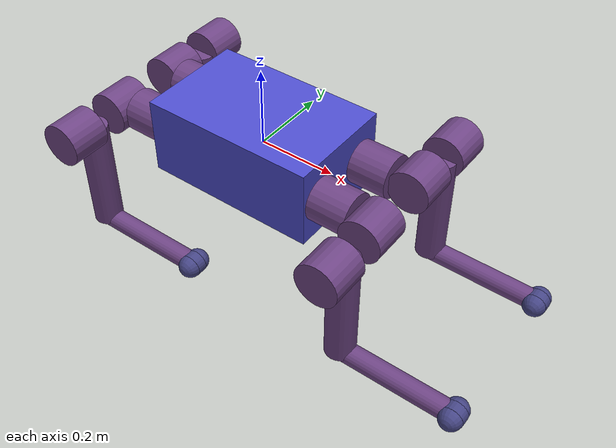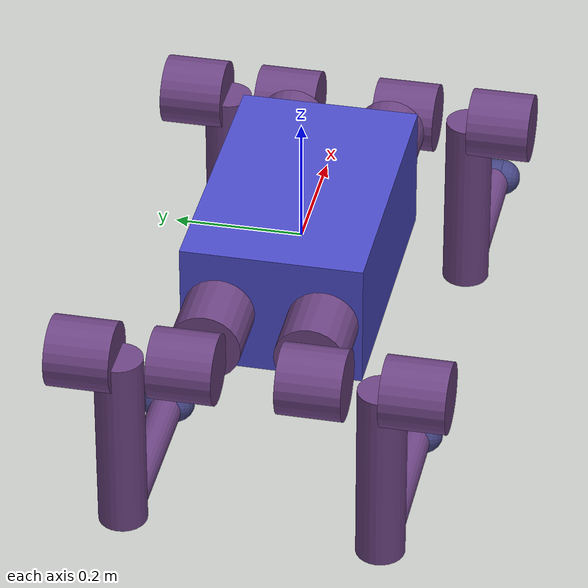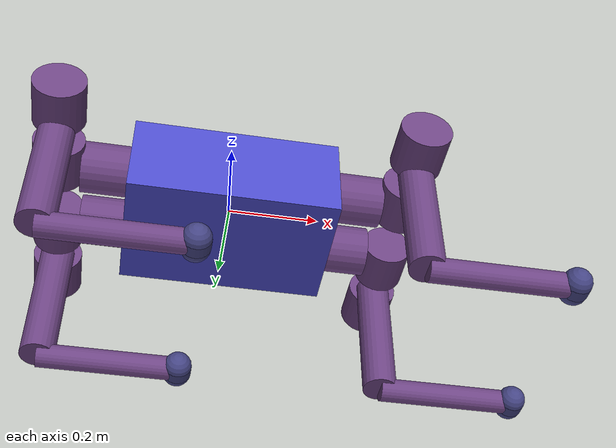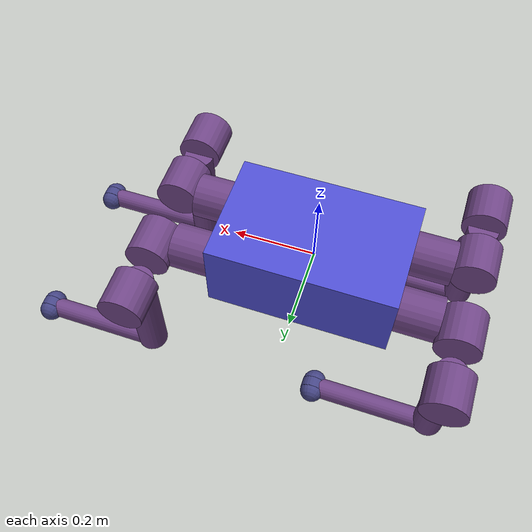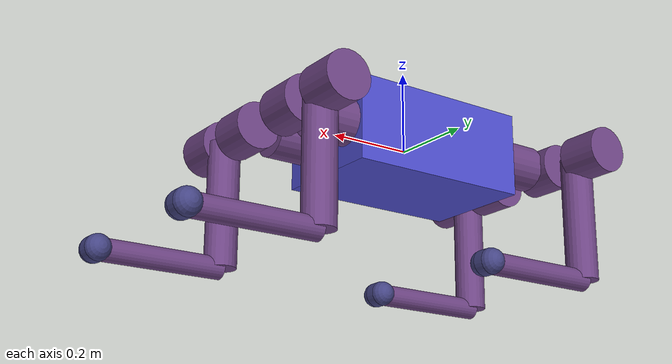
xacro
<?xml version="1.0"?>
<robot xmlns:xacro="http://www.ros.org/wiki/xacro" name="Cerberus">

    <xacro:include filename="$(find cerberus_description)/urdf/leg_macro.xacro" />

    <xacro:arg name="effort" default="20" />
    <xacro:arg name="max_joint_velocity" default="150.0" />

    <link name="base_link">
        <visual>
            <geometry>
                <box size="0.45 0.282 0.2" />
            </geometry>
            <material name="blue">
                <color rgba="0.3 0.3 0.8 1.0" />
            </material>
        </visual>
        <collision>
            <geometry>
                <box size="0.45 0.282 0.2" />
            </geometry>
        </collision>
        <inertial>
            <mass value="5.0" />
            <inertia ixx="0.04980166667" iyy="0.1010416667" izz="0.11751"
                ixy="0.0" ixz="0.0" iyz="0.0" />
        </inertial>
    </link>

    <xacro:leg_macro
        leg_name="front_left"
        parent_link="base_link"
        gearbox_offset="0.1"
        connector_xyz="0.275 0.08 0"
        connector_rpy="0 1.5707963267948966 0"
        axis="0 1 0"
        rot_off="1.5707963267948966"
        shoulder_lower_limit="-2.094395102"
        shoulder_upper_limit="1.047197551"
        knee_rot_off="1.5707963267948966"
        knee_lower_limit="-0.5235987756"
        knee_upper_limit="1.047197551"
        effort="$(arg effort)"
        max_joint_velocity="$(arg effort)"
    />

    <xacro:leg_macro
        leg_name="front_right"
        parent_link="base_link"
        gearbox_offset="0.1"
        connector_xyz="0.275 -0.08 0"
        connector_rpy="3.14159265 -1.5707963267948966 0"
        axis="0 -1 0"
        rot_off="-1.5707963267948966"
        shoulder_lower_limit="-2.094395102"
        shoulder_upper_limit="1.047197551"
        knee_rot_off="-1.5707963267948966"
        knee_lower_limit="-0.5235987756"
        knee_upper_limit="1.047197551"
        effort="$(arg effort)"
        max_joint_velocity="$(arg effort)"
    />

    <xacro:leg_macro
        leg_name="rear_left"
        parent_link="base_link"
        gearbox_offset="-0.1"
        connector_xyz="-0.275 0.08 0"
        connector_rpy="0 1.5707963267948966 0"
        axis="0 1 0"
        rot_off="1.5707963267948966"
        shoulder_lower_limit="-2.094395102"
        shoulder_upper_limit="1.047197551"
        knee_rot_off="1.5707963267948966"
        knee_lower_limit="-0.5235987756"
        knee_upper_limit="1.047197551"
        effort="$(arg effort)"
        max_joint_velocity="$(arg effort)"
    />

    <xacro:leg_macro
        leg_name="rear_right"
        parent_link="base_link"
        gearbox_offset="-0.1"
        connector_xyz="-0.275 -0.08 0"
        connector_rpy="3.14159265 -1.5707963267948966 0"
        axis="0 -1 0"
        rot_off="-1.5707963267948966"
        shoulder_lower_limit="-2.094395102"
        shoulder_upper_limit="1.047197551"
        knee_rot_off="-1.5707963267948966"
        knee_lower_limit="-0.5235987756"
        knee_upper_limit="1.047197551"
        effort="$(arg effort)"
        max_joint_velocity="$(arg effort)"
    />

    <ros2_control name="IgnitionSystem" type="system">
        <hardware>
            <plugin>ign_ros2_control/IgnitionSystem</plugin>
        </hardware>

        <joint name="front_left_shoulder_connector">
            <command_interface name="position" />
            <command_interface name="velocity" />
            <state_interface name="position" />
            <state_interface name="velocity" />
        </joint>

        <joint name="front_left_shoulder_leg">
            <command_interface name="position" />
            <command_interface name="velocity" />
            <state_interface name="position" />
            <state_interface name="velocity" />
        </joint>

        <joint name="front_left_knee">
            <command_interface name="position" />
            <command_interface name="velocity" />
            <state_interface name="position" />
            <state_interface name="velocity" />
        </joint>

        <joint name="front_right_shoulder_connector">
            <command_interface name="position" />
            <command_interface name="velocity" />
            <state_interface name="position" />
            <state_interface name="velocity" />
        </joint>

        <joint name="front_right_shoulder_leg">
            <command_interface name="position" />
            <command_interface name="velocity" />
            <state_interface name="position" />
            <state_interface name="velocity" />
        </joint>
        <joint name="front_right_knee">
            <command_interface name="position" />
            <command_interface name="velocity" />
            <state_interface name="position" />
            <state_interface name="velocity" />
        </joint>

        <joint name="rear_left_shoulder_connector">
            <command_interface name="position" />
            <command_interface name="velocity" />
            <state_interface name="position" />
            <state_interface name="velocity" />
        </joint>

        <joint name="rear_left_shoulder_leg">
            <command_interface name="position" />
            <command_interface name="velocity" />
            <state_interface name="position" />
            <state_interface name="velocity" />
        </joint>

        <joint name="rear_left_knee">
            <command_interface name="position" />
            <command_interface name="velocity" />
            <state_interface name="position" />
            <state_interface name="velocity" />
        </joint>

        <joint name="rear_right_shoulder_connector">
            <command_interface name="position" />
            <command_interface name="velocity" />
            <state_interface name="position" />
            <state_interface name="velocity" />
        </joint>

        <joint name="rear_right_shoulder_leg">
            <command_interface name="position" />
            <command_interface name="velocity" />
            <state_interface name="position" />
            <state_interface name="velocity" />
        </joint>

        <joint name="rear_right_knee">
            <command_interface name="position" />
            <command_interface name="velocity" />
            <state_interface name="position" />
            <state_interface name="velocity" />
        </joint>

    </ros2_control>

    <gazebo>
        <plugin filename="ign_ros2_control-system"
            name="ign_ros2_control::IgnitionROS2ControlPlugin">
            <robot_param>robot_description</robot_param>
            <robot_param_node>robot_state_publisher</robot_param_node>
            <parameters>$(find cerberus_bringup)/config/cerberus.yaml</parameters>
        </plugin>
    </gazebo>

    <gazebo reference="base_link">
        <sensor name="imu_sensor" type="imu">
            <update_rate>50</update_rate>
            <always_on>true</always_on>
            <visualize>true</visualize>
            <topic>imu</topic>
            <imu>
                <noise type="none" />
                <!-- or define noise parameters here -->
            </imu>
        </sensor>
    </gazebo>

</robot>

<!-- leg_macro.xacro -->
<robot xmlns:xacro="http://www.ros.org/wiki/xacro">
  <xacro:macro name="leg_macro"
    params="
      leg_name
      parent_link
      gearbox_offset
      connector_xyz:='0.35 0.08 0'
      connector_rpy:='0 1.5707963267948966 0'
      axis:='0 1 0'
      rot_off='0'
      shoulder_lower_limit='-1.57'
      shoulder_upper_limit='1.57'
      knee_rot_off='0'
      knee_lower_limit='-1.57'
      knee_upper_limit='1.57'
      effort='200'
      max_joint_velocity='2.0'
    ">
    <joint name="${leg_name}_leg_connector" type="fixed">
      <parent link="${parent_link}" />
      <child link="${leg_name}_gearbox_shoulder" />
      <origin xyz="${connector_xyz}" rpy="${connector_rpy}" />
    </joint>

    <link name="${leg_name}_gearbox_shoulder">
      <visual>
        <geometry>
          <cylinder radius="0.055" length="0.1" />
        </geometry>
        <material name="purple">
          <color rgba="0.43 0.27 0.52 1" />
        </material>
      </visual>
      <collision>
        <geometry>
          <cylinder radius="0.055" length="0.1" />
        </geometry>
      </collision>
      <inertial>
        <mass value="0.95" />
        <inertia ixx="0.01" iyy="0.01" izz="0.01"
          ixy="0" ixz="0" iyz="0" />
      </inertial>
    </link>

    <joint name="${leg_name}_shoulder_connector" type="revolute">
      <parent link="${leg_name}_gearbox_shoulder" />
      <child link="${leg_name}_gearbox_shoulder2" />
      <origin xyz="0 0 ${gearbox_offset}" rpy="1.5707963267948963 0 0" />
      <axis xyz="${axis}" />
      <limit effort="${effort}" velocity="${max_joint_velocity}" lower="-1.57" upper="1.57" />
    </joint>

    <link name="${leg_name}_gearbox_shoulder2">
      <visual>
        <origin xyz="0 0 -0.0175" />
        <geometry>
          <cylinder radius="0.055" length="0.1" />
        </geometry>
        <material name="purple">
          <color rgba="0.43 0.27 0.52 1" />
        </material>
      </visual>
      <collision>
        <origin xyz="0 0 -0.0175" />
        <geometry>
          <cylinder radius="0.055" length="0.1" />
        </geometry>
      </collision>
      <inertial>
        <mass value="0.95" />
        <inertia ixx="0.01" iyy="0.01" izz="0.01"
          ixy="0" ixz="0" iyz="0" />
      </inertial>
    </link>

    <joint name="${leg_name}_shoulder_leg" type="revolute">
      <parent link="${leg_name}_gearbox_shoulder2" />
      <child link="${leg_name}_upper_leg" />
      <origin xyz="0 0 -0.1205" rpy="1.5707963267948963 0 ${rot_off}" />
      <axis xyz="${axis}" />
      <limit effort="${effort}" velocity="${max_joint_velocity}" lower="${shoulder_lower_limit}"
        upper="${shoulder_upper_limit}" />
    </joint>

    <link name="${leg_name}_outer_gearbox">
      <visual>
        <origin xyz="0 0 -0.0175" />
        <geometry>
          <cylinder radius="0.055" length="0.1" />
        </geometry>
        <material name="purple">
          <color rgba="0.43 0.27 0.52 1" />
        </material>
      </visual>
      <collision>
        <origin xyz="0 0 -0.0175" />
        <geometry>
          <cylinder radius="0.055" length="0.1" />
        </geometry>
      </collision>
      <inertial>
        <mass value="0.95" />
        <inertia ixx="0.01" iyy="0.01" izz="0.01"
          ixy="0" ixz="0" iyz="0" />
      </inertial>
    </link>

    <joint name="${leg_name}_shoulder_gearbox" type="fixed">
      <parent link="${leg_name}_upper_leg" />
      <child link="${leg_name}_outer_gearbox" />
      <origin xyz="0 -0.07 0" rpy="1.5707963267948963 0 0" />
    </joint>

    <link name="${leg_name}_upper_leg">
      <visual>
        <origin xyz="0 0 0.15" />
        <geometry>
          <cylinder radius="0.038" length="0.3" />
        </geometry>
        <material name="purple">
          <color rgba="0.43 0.27 0.52 1" />
        </material>
      </visual>
      <collision>
        <origin xyz="0 0 0.15" />
        <geometry>
          <cylinder radius="0.038" length="0.3" />
        </geometry>
      </collision>
      <inertial>
        <mass value="0.55" />
        <inertia ixx="0.01" iyy="0.01" izz="0.01"
          ixy="0" ixz="0" iyz="0" />
      </inertial>
    </link>

    <joint name="${leg_name}_knee" type="revolute">
      <parent link="${leg_name}_upper_leg" />
      <child link="${leg_name}_lower_leg" />
      <origin xyz="0 0 0.3" rpy="0 ${knee_rot_off} 0" />
      <axis xyz="${axis}" />
      <limit effort="${effort}" velocity="${max_joint_velocity}" lower="${knee_lower_limit}"
        upper="${knee_upper_limit}" />
    </joint>

    <link name="${leg_name}_lower_leg">
      <visual>
        <origin xyz="0 0 0.15" />
        <geometry>
          <cylinder radius="0.026" length="0.3" />
        </geometry>
        <material name="purple">
          <color rgba="0.43 0.27 0.52 1" />
        </material>
      </visual>
      <collision>
        <origin xyz="0 0 0.15" />
        <geometry>
          <cylinder radius="0.026" length="0.3" />
        </geometry>
      </collision>
      <inertial>
        <mass value="0.4" />
        <inertia ixx="0.01" iyy="0.01" izz="0.01"
          ixy="0" ixz="0" iyz="0" />
      </inertial>
    </link>

    <joint name="${leg_name}_sock_connector" type="fixed">
      <parent link="${leg_name}_lower_leg" />
      <child link="${leg_name}_sock" />
      <origin xyz="0 0 0.3" rpy="1.5707963267948966 0 0" />
    </joint>

    <link name="${leg_name}_sock">
      <visual>
        <origin xyz="0 0 0" />
        <geometry>
          <cylinder radius="0.030" length="0.025" />
        </geometry>
        <material name="kinda_blue">
          <color rgba="0.27 0.27 0.52 1" />
        </material>
      </visual>
      <visual>
        <origin xyz="0 0 0.0125" />
        <geometry>
          <sphere radius="0.030" />
        </geometry>
        <material name="kinda_blue">
          <color rgba="0.27 0.27 0.52 1" />
        </material>
      </visual>
      <visual>
        <origin xyz="0 0 -0.0125" />
        <geometry>
          <sphere radius="0.030" />
        </geometry>
        <material name="kinda_blue">
          <color rgba="0.27 0.27 0.52 1" />
        </material>
      </visual>

      <collision>
        <origin xyz="0 0 0" />
        <geometry>
          <cylinder radius="0.030" length="0.025" />
        </geometry>
      </collision>
      <collision>
        <origin xyz="0 0 0.0125" />
        <geometry>
          <sphere radius="0.030" />
        </geometry>
      </collision>
      <collision>
        <origin xyz="0 0 -0.0125" />
        <geometry>
          <sphere radius="0.030" />
        </geometry>
      </collision>

      <inertial>
        <mass value="0.1" />
        <inertia ixx="0.01" iyy="0.01" izz="0.01"
          ixy="0" ixz="0" iyz="0" />
      </inertial>
    </link>

  </xacro:macro>
</robot>
